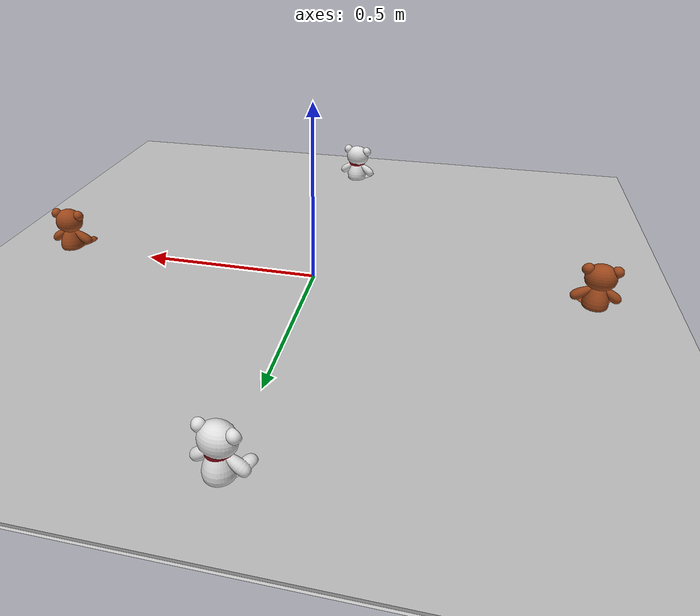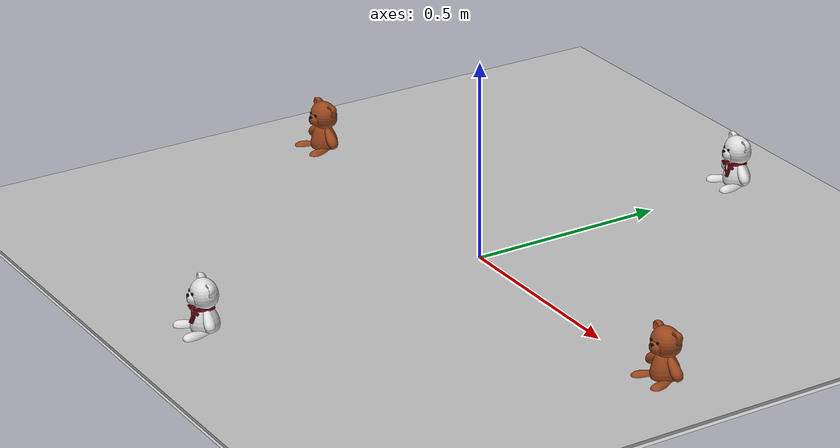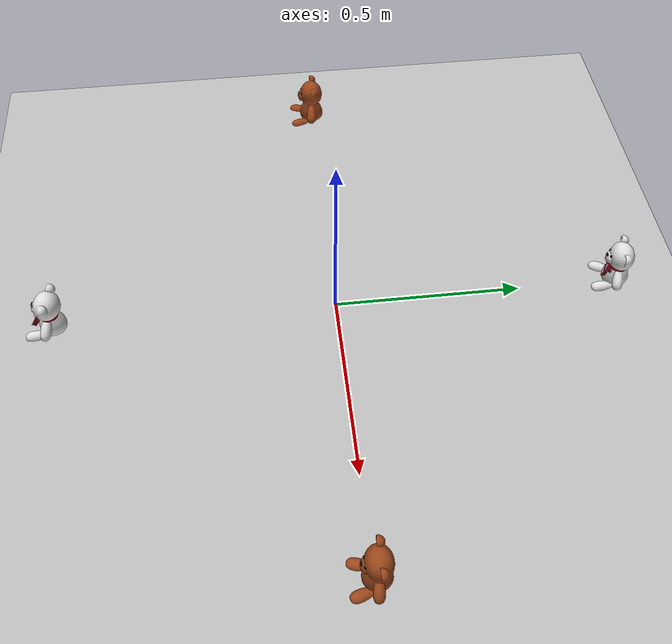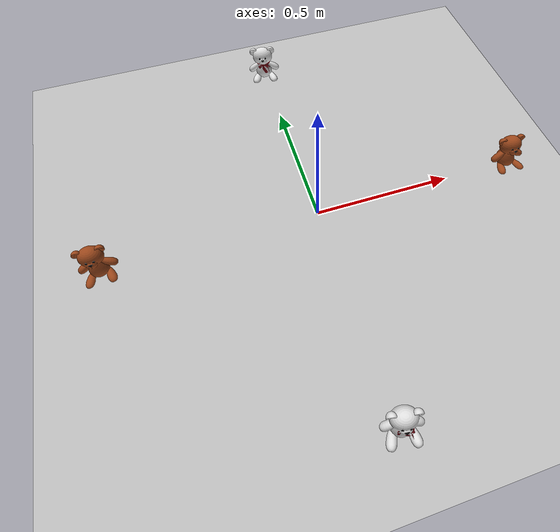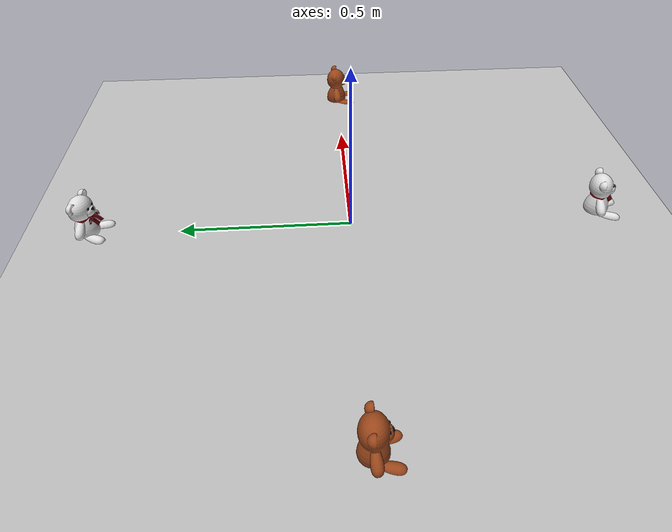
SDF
<?xml version="1.0" ?>
<sdf version="1.5">
  <world name="default">

    <include>
      <uri>model://ground_plane</uri>
      <pose> 0 0 -.0001 0 0 0 </pose>
    </include>

    <light name="inner_point_white1" type="point">
      <pose>5 3 4 0 0 0</pose>
      <diffuse>0.2 0.2 0.2 1</diffuse>
      <specular>0.1 0.1 0.1 1</specular>
      <attenuation>
        <range>20</range>
        <linear>0.1</linear>
        <constant>0.2</constant>
        <quadratic>0</quadratic>
      </attenuation>
      <cast_shadows>0</cast_shadows>
      <direction>0 0 -1</direction>
    </light>
    <light name="inner_point_white2" type="point">
      <pose>0 3 4 0 0 0</pose>
      <diffuse>0.2 0.2 0.2 1</diffuse>
      <specular>0.1 0.1 0.1 1</specular>
      <attenuation>
        <range>20</range>
        <linear>0.1</linear>
        <constant>0.2</constant>
        <quadratic>0</quadratic>
      </attenuation>
      <cast_shadows>0</cast_shadows>
      <direction>0 0 -1</direction>
    </light>
    <light name="inner_point_white3" type="point">
      <pose>-5 3 4 0 0 0</pose>
      <diffuse>0.2 0.2 0.2 1</diffuse>
      <specular>0.1 0.1 0.1 1</specular>
      <attenuation>
        <range>20</range>
        <linear>0.1</linear>
        <constant>0.2</constant>
        <quadratic>0</quadratic>
      </attenuation>
      <cast_shadows>0</cast_shadows>
      <direction>0 0 -1</direction>
    </light>
    <light name="inner_point_white4" type="point">
      <pose>-5 -3 4 0 0 0</pose>
      <diffuse>0.2 0.2 0.2 1</diffuse>
      <specular>0.1 0.1 0.1 1</specular>
      <attenuation>
        <range>20</range>
        <linear>0.1</linear>
        <constant>0.2</constant>
        <quadratic>0</quadratic>
      </attenuation>
      <cast_shadows>0</cast_shadows>
      <direction>0 0 -1</direction>
    </light>
    <light name="inner_point_white5" type="point">
      <pose>0 -3 4 0 0 0</pose>
      <diffuse>0.2 0.2 0.2 1</diffuse>
      <specular>0.1 0.1 0.1 1</specular>
      <attenuation>
        <range>20</range>
        <linear>0.1</linear>
        <constant>0.2</constant>
        <quadratic>0</quadratic>
      </attenuation>
      <cast_shadows>0</cast_shadows>
      <direction>0 0 -1</direction>
    </light>
    <light name="inner_point_white6" type="point">
      <pose>5 -3 4 0 0 0</pose>
      <diffuse>0.2 0.2 0.2 1</diffuse>
      <specular>0.1 0.1 0.1 1</specular>
      <attenuation>
        <range>20</range>
        <linear>0.1</linear>
        <constant>0.2</constant>
        <quadratic>0</quadratic>
      </attenuation>
      <cast_shadows>0</cast_shadows>
      <direction>0 0 -1</direction>
    </light>

    <include>
      <uri>model://pista_tmr_2021</uri>
      <pose> 0 0 0.01 0 0 3.14159 </pose>
      <name>PistaTMR2021</name>
    </include>

    <include>
      <uri>model://osito_blanco</uri>
      <name>osito_blanco_1</name>
      <pose>0 0.75 0 0 0 0</pose>
    </include>

    <include>
      <uri>model://osito_blanco</uri>
      <name>osito_blanco_2</name>
      <pose>0 -0.75 0 0 0 0</pose>
    </include>

    <include>
      <uri>model://osito_cafe</uri>
      <name>osito_cafe_1</name>
      <pose>0.75 0 0 0 0 0</pose>
    </include>

    <include>
      <uri>model://osito_cafe</uri>
      <name>osito_cafe_2</name>
      <pose>-0.75 0 0 0 0 0</pose>
    </include>

    <gui fullscreen="0">
      <camera name="user_camera">
        <pose>1.15 1.93 2.85 0 1.08 1.07</pose>
        <view_controller>orbit</view_controller>
      </camera>
    </gui>
  </world>
</sdf>

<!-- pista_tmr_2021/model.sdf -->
<sdf version="1.4">
	<model name="pista_tmr_2021">
		<static>true</static>
		<link name="pista_link">
			<collision name="collision">
				<geometry>
					<plane>
						<normal>0 0 1</normal>
						<size>12 8</size>
					</plane>
				</geometry>
				<surface>
					<friction>
						<ode>
							<mu>100</mu>
							<mu2>50</mu2>
						</ode>
					</friction>
				</surface>
			</collision>
			<visual name="visual">
				<geometry>
					<plane>
						<normal>0 0 1</normal>
						<size>12 8</size>
					</plane>
				</geometry>
				<material>
					<script>
						<uri>model://pista_tmr_2021/materials/scripts</uri>
						<uri>model://pista_tmr_2021/materials/textures</uri>
						<name>pista_tmr_2021/Image</name>
					</script>
				</material>
			</visual>
		</link>
	</model>
</sdf>

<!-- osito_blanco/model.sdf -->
<sdf version='1.5'>
  <model name ="osito_blanco">

    <link name='base_link'></link>

    <link name="link">
      <pose>0 0 0.07 0 0 0</pose>
      <inertial>
        <mass>0.1</mass>
        <inertia>
          <ixx>0.01</ixx>
          <ixy>0.0</ixy>
          <ixz>0.0</ixz>
          <iyy>0.01</iyy>
          <iyz>0.0</iyz>
          <izz>0.01</izz>
        </inertia>
      </inertial>
      <collision name="collision">
        <geometry>
          <box>
            <size>0.1 0.05 0.14</size>
          </box>
        </geometry>
      </collision>
      <visual name="visual">
        <geometry>
          <mesh>
            <uri> model://osito_blanco/meshes/blanco.dae </uri>
          </mesh>
        </geometry>
      </visual>
    </link>

    <joint name='joint' type='fixed'>
      <child>link</child>
      <parent>base_link</parent>
      <axis>
          <xyz>0.000000 0.000000 1.000000</xyz>
      </axis>
    </joint>

  </model>
</sdf>

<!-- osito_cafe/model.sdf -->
<sdf version='1.5'>
  <model name ="osito_cafe">

    <link name="base_link"></link>

    <link name="link">
      <pose>0 0 0.07 0 0 0</pose>
      <inertial>
        <mass>0.1</mass>
        <inertia>
          <ixx>0.01</ixx>
          <ixy>0.0</ixy>
          <ixz>0.0</ixz>
          <iyy>0.01</iyy>
          <iyz>0.0</iyz>
          <izz>0.01</izz>
        </inertia>
      </inertial>
      <collision name="collision">
        <geometry>
          <box>
            <size>0.1 0.05 0.14</size>
          </box>
        </geometry>
      </collision>
      <visual name="visual">
        <geometry>
          <mesh>
            <uri> model://osito_cafe/meshes/cafe.dae </uri>
          </mesh>
        </geometry>
      </visual>
    </link>

    <joint name='joint' type='fixed'>
      <child>link</child>
      <parent>base_link</parent>
      <axis>
          <xyz>0.000000 0.000000 1.000000</xyz>
      </axis>
    </joint>

  </model>
</sdf>
